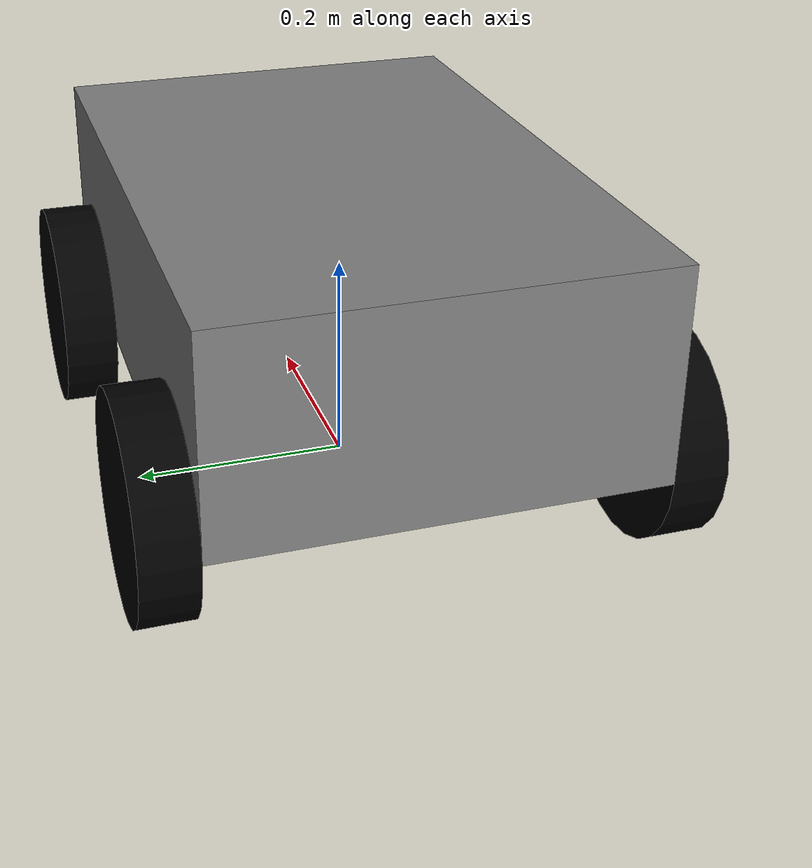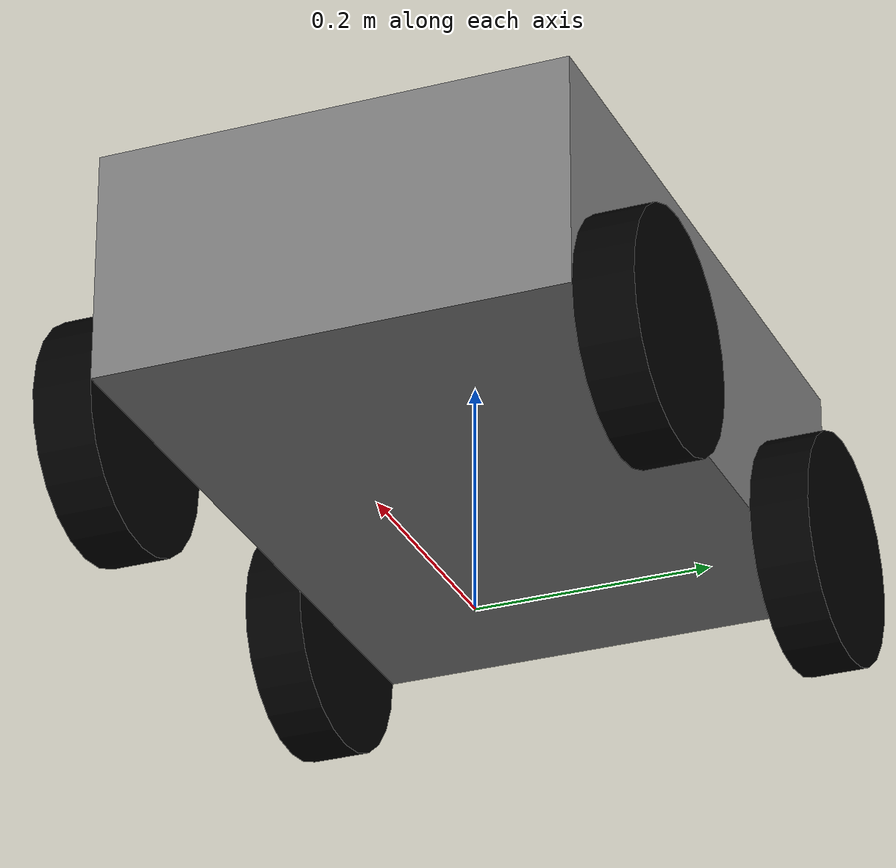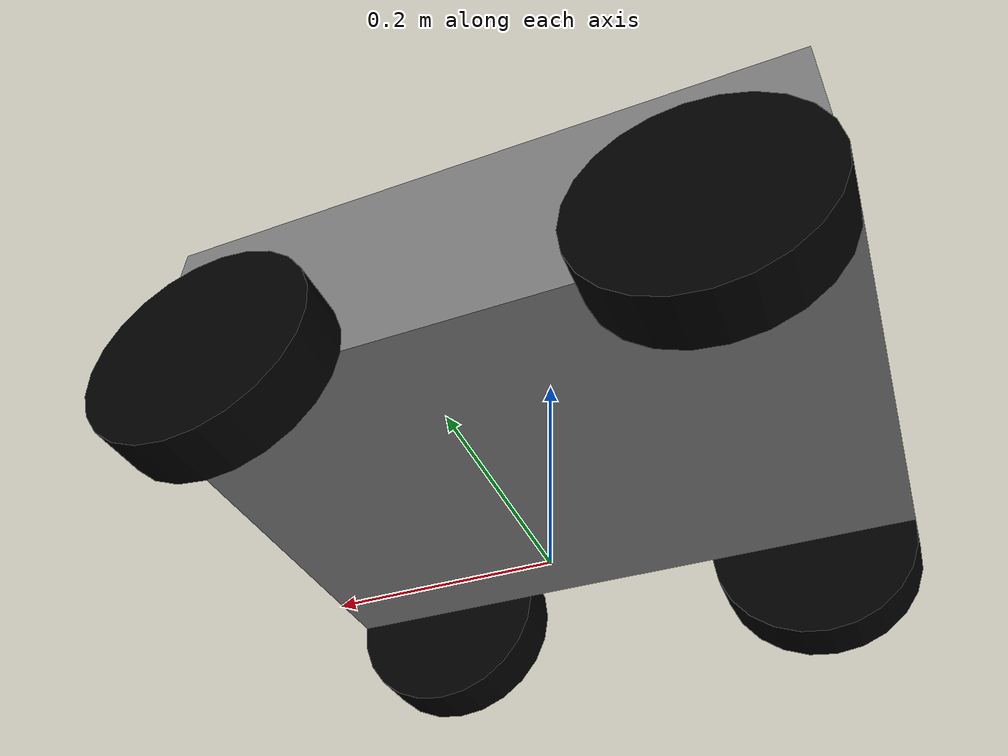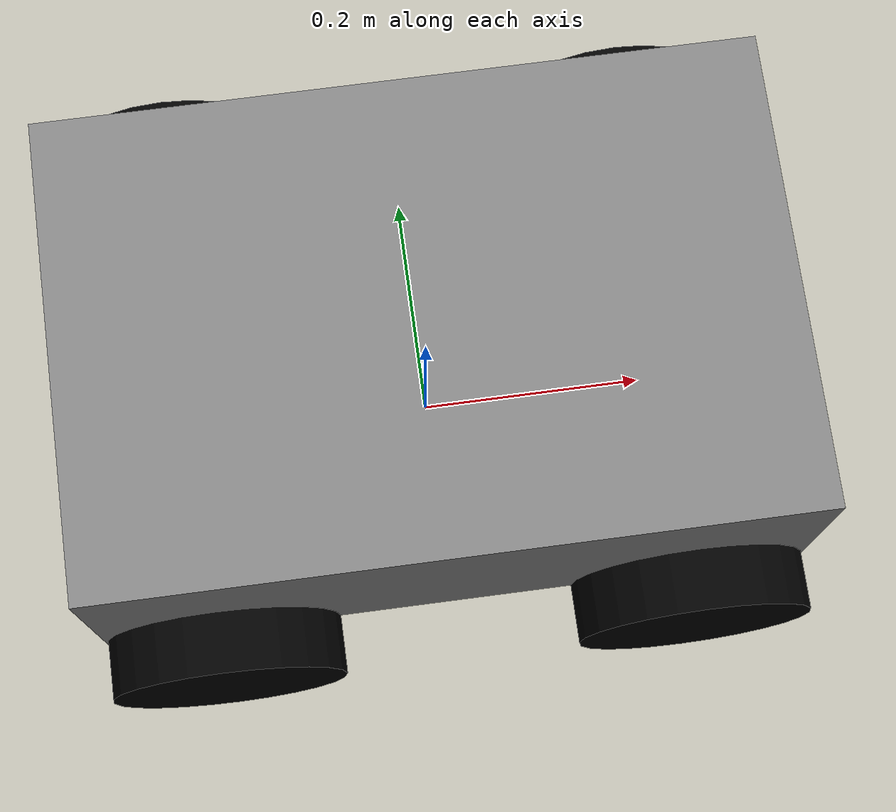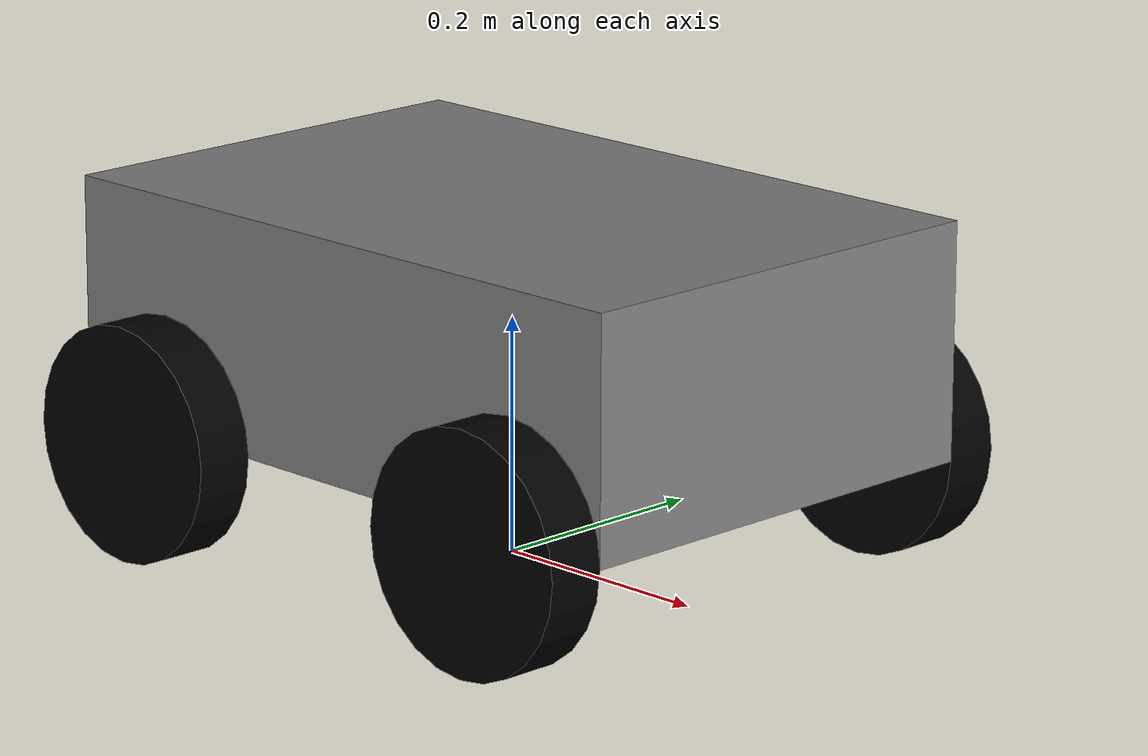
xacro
<?xml version="1.0" encoding="utf-8"?>
<robot name="four_wheel_robot" xmlns:xacro="http://www.ros.org/wiki/xacro">

  <!-- Common properties - Materials -->
  <xacro:include filename="$(find robot_b_description)/urdf/common_properties.xacro" />

  <!-- Gazebo configuration -->
  <xacro:include filename="$(find robot_b_description)/urdf/robot.gazebo.xacro" />

  <!-- Link base_footprint (ROS convention for the robot's base) -->
  <link name="base_footprint"/>

  <!-- Joint connecting base_footprint to base_link -->
  <joint name="base_joint" type="fixed">
    <origin xyz="0 0 0.2" rpy="0 0 0" />
    <parent link="base_footprint"/>
    <child link="base_link" />
  </joint>

  <!-- Main link of the robot (central body) -->
  <link name="base_link">
    <visual>
      <geometry>
        <box size="0.6 0.4 0.2"/> <!-- A simple box for the base -->
      </geometry>
      <material name="grey"/>
    </visual>
    <collision>
      <geometry>
        <box size="0.6 0.4 0.2"/>
      </geometry>
    </collision>
    <inertial>
      <origin xyz="0 0 0"/>
      <mass value="10.0"/> <!-- Base mass -->
      <!-- Inertia moments for a box -->
      <inertia ixx="1.0" ixy="0.0" ixz="0.0"
               iyy="1.0" iyz="0.0"
               izz="1.0"/>
    </inertial>
  </link>

  <!-- Macro to define a wheel, facilitating the creation of all four -->
  <xacro:macro name="wheel" params="prefix parent_link x_offset y_offset z_offset">
    <joint name="${prefix}_wheel_joint" type="continuous">
      <parent link="${parent_link}"/>
      <child link="${prefix}_wheel_link"/>
      <!-- rpy="-1.570795 0 0" rotates the wheel so that the Z-axis points outward (horizontal) -->
      <origin xyz="${x_offset} ${y_offset} ${z_offset} " rpy="-1.570795 0 0"/>
      <axis xyz="0 0 1"/> <!-- The wheel's rotation axis is its own local Z-axis -->
    </joint>

    <link name="${prefix}_wheel_link">
      <visual>
        <geometry>
          <cylinder radius="0.1" length="0.05"/> <!-- A cylinder for the wheel -->
        </geometry>
        <material name="black"/>
      </visual>
      <collision>
        <geometry>
          <cylinder radius="0.1" length="0.05"/>
        </geometry>
      </collision>
      <inertial>
        <origin xyz="0 0 0"/>
        <mass value="0.5"/> <!-- Wheel mass -->
        <!-- Inertia moments for a cylinder -->
        <inertia ixx="0.002" ixy="0.0" ixz="0.0"
                 iyy="0.002" iyz="0.0"
                 izz="0.002"/>
      </inertial>
    </link>
  </xacro:macro>

  <!-- Instantiate the four wheels using the macro -->
  <!-- Front Left Wheel -->
  <xacro:wheel prefix="front_left" parent_link="base_link" x_offset="0.2" y_offset="0.225" z_offset="-0.1"/>
  <!-- Front Right Wheel -->
  <xacro:wheel prefix="front_right" parent_link="base_link" x_offset="0.2" y_offset="-0.225" z_offset="-0.1"/>
  <!-- Back Left Wheel -->
  <xacro:wheel prefix="back_left" parent_link="base_link" x_offset="-0.2" y_offset="0.225" z_offset="-0.1"/>
  <!-- Back Right Wheel -->
  <xacro:wheel prefix="back_right" parent_link="base_link" x_offset="-0.2" y_offset="-0.225" z_offset="-0.1"/>

</robot>

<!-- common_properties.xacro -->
<robot xmlns:xacro="http://www.ros.org/wiki/xacro">

<!-- Material Definition -->
<material name="white">
    <color rgba="1 1 1 0.5"/>
</material>
<material name="red">
    <color rgba="1 0 0 1"/>
</material>
<material name="orange">
    <color rgba="1 0.3 0.1 1"/>
</material>
<material name="blue">
    <color rgba="0.2 0.2 1 1"/>
</material>
<material name="black">
    <color rgba="0 0 0 1"/>
</material>
<material name="grey">
    <color rgba="0.5 0.5 0.5 1"/>
</material>

</robot>
